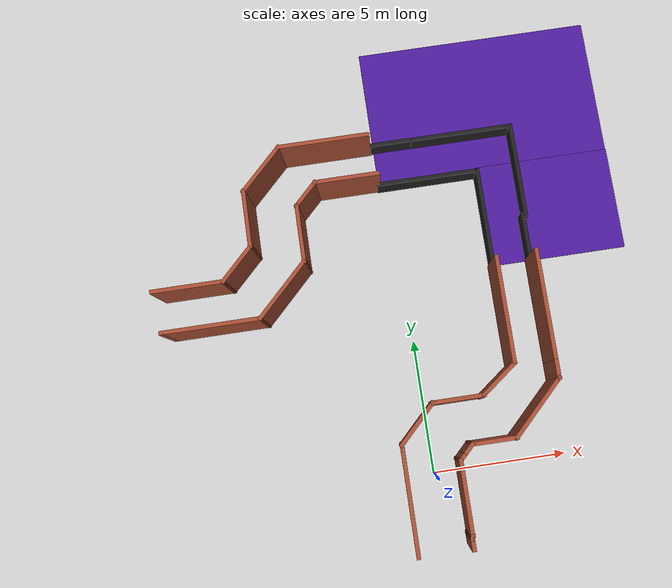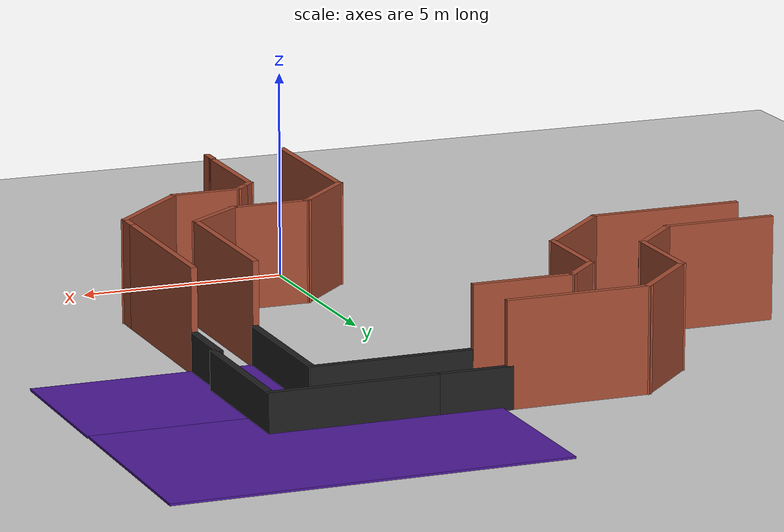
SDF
<sdf version="1.6">
 <world name="default">
  <light type="directional" name="sun">
   <cast_shadows>false</cast_shadows>
   <pose>-6 2 5 -0.5 -0.5 0</pose>
   <diffuse>0.8 0.8 0.8 1</diffuse>
   <specular>0.9 0.9 0.9 1</specular>
   <attenuation>
    <range>1000</range>
    <constant>0.9</constant>
    <linear>0.01</linear>
    <quadratic>0.001</quadratic>
   </attenuation>
   <direction>0 0 -1</direction>
  </light>
  <light type="directional" name="sun2">
   <cast_shadows>false</cast_shadows>
   <pose>-3 -7 5 0.5 0.5 0</pose>
   <diffuse>0.8 0.8 0.8 1</diffuse>
   <specular>0.9 0.9 0.9 1</specular>
   <attenuation>
    <range>1000</range>
    <constant>0.9</constant>
    <linear>0.01</linear>
    <quadratic>0.001</quadratic>
   </attenuation>
   <direction>0 0 -1</direction>
  </light>
  <model name="ground_plane">
   <static>1</static>
   <link name="link">
    <collision name="collision">
     <geometry><plane><normal>0 0 1</normal><size>100 100</size></plane></geometry>
     <surface><friction><ode><mu>100</mu><mu2>50</mu2></ode></friction></surface>
    </collision>
    <visual name="visual">
     <cast_shadows>0</cast_shadows>
     <geometry><plane><normal>0 0 1</normal><size>100 100</size></plane></geometry>
     <material>
      <script><uri>file://media/materials/scripts/gazebo.material</uri><name>Gazebo/Grey</name></script>
     </material>
    </visual>
   </link>
  </model>
  <gravity>0 0 -9.8</gravity>
  <magnetic_field>6e-06 2.3e-05 -4.2e-05</magnetic_field>
  <atmosphere type="adiabatic"/>
  <physics name="default_physics" default="0" type="ode">
   <max_step_size>0.01</max_step_size>
   <real_time_factor>1</real_time_factor>
   <real_time_update_rate>0</real_time_update_rate>
  </physics>
  <scene><ambient>0.4 0.4 0.4 1</ambient><background>0.7 0.7 0.7 1</background><shadows>0</shadows></scene>
  <spherical_coordinates>
   <surface_model>EARTH_WGS84</surface_model>
   <latitude_deg>0</latitude_deg>
   <longitude_deg>0</longitude_deg>
   <elevation>0</elevation>
   <heading_deg>0</heading_deg>
  </spherical_coordinates>
  <model name="Circuit_ql_2c_0">
   <link name="link_0">
    <pose>-0.02607 1.78312 0 0 -0 0</pose>
    <inertial>
     <mass>2.28469</mass>
     <inertia><ixx>6.04283</ixx><ixy>0</ixy><ixz>0</ixz><iyy>16.0094</iyy><iyz>0</iyz><izz>22.0522</izz></inertia>
     <pose>0 0 0.01 0 -0 0</pose>
    </inertial>
    <visual name="visual">
     <pose>0 0 0.05 0 -0 0</pose>
     <geometry><box><size>9.16985 5.63372 0.05</size></box></geometry>
     <material>
      <lighting>1</lighting>
      <script><uri>file://media/materials/scripts/gazebo.material</uri><name>Gazebo/Indigo</name></script>
      <emissive>0 0 0 1</emissive>
      <shader type="vertex"><normal_map>__default__</normal_map></shader>
     </material>
     <cast_shadows>0</cast_shadows>
    </visual>
   </link>
   <link name="Wall_1">
    <pose>-2.675 -1.075 0 0 -0 0</pose>
    <visual name="Wall_1_Visual">
     <pose>0 0 0.5 0 -0 0</pose>
     <geometry><box><size>4 0.15 1</size></box></geometry>
     <material>
      <script><uri>file://media/materials/scripts/gazebo.material</uri><name>Gazebo/Black</name></script>
      <emissive>0 0 0 1</emissive>
     </material>
     <cast_shadows>0</cast_shadows>
    </visual>
    <collision name="Wall_1_Collision">
     <pose>0 0 0.5 0 -0 0</pose>
     <geometry><box><size>4 0.15 1</size></box></geometry>
     <surface>
      <friction>
       <ode><mu>1</mu><mu2>1</mu2><fdir1>0 0 0</fdir1><slip1>0</slip1><slip2>0</slip2></ode>
       <torsional>
        <coefficient>1</coefficient>
        <patch_radius>0</patch_radius>
        <surface_radius>0</surface_radius>
        <use_patch_radius>1</use_patch_radius>
        <ode><slip>0</slip></ode>
       </torsional>
      </friction>
      <bounce><restitution_coefficient>0</restitution_coefficient><threshold>1e+06</threshold></bounce>
      <contact>
       <collide_without_contact>0</collide_without_contact>
       <collide_without_contact_bitmask>1</collide_without_contact_bitmask>
       <collide_bitmask>1</collide_bitmask>
       <ode>
        <soft_cfm>0</soft_cfm>
        <soft_erp>0.2</soft_erp>
        <kp>1e+13</kp>
        <kd>1</kd>
        <max_vel>0.01</max_vel>
        <min_depth>0</min_depth>
       </ode>
       <bullet>
        <split_impulse>1</split_impulse>
        <split_impulse_penetration_threshold>-0.01</split_impulse_penetration_threshold>
        <soft_cfm>0</soft_cfm>
        <soft_erp>0.2</soft_erp>
        <kp>1e+13</kp>
        <kd>1</kd>
       </bullet>
      </contact>
     </surface>
    </collision>
   </link>
   <link name="Wall_12">
    <pose>-1.111 0.509 0 0 -0 0</pose>
    <visual name="Wall_12_Visual">
     <pose>0 0 0.5 0 -0 0</pose>
     <geometry><box><size>4 0.15 1</size></box></geometry>
     <material>
      <script><uri>file://media/materials/scripts/gazebo.material</uri><name>Gazebo/Black</name></script>
      <emissive>0 0 0 1</emissive>
     </material>
     <cast_shadows>0</cast_shadows>
    </visual>
    <collision name="Wall_12_Collision">
     <pose>0 0 0.5 0 -0 0</pose>
     <geometry><box><size>4 0.15 1</size></box></geometry>
     <surface>
      <friction>
       <ode><mu>1</mu><mu2>1</mu2><fdir1>0 0 0</fdir1><slip1>0</slip1><slip2>0</slip2></ode>
       <torsional>
        <coefficient>1</coefficient>
        <patch_radius>0</patch_radius>
        <surface_radius>0</surface_radius>
        <use_patch_radius>1</use_patch_radius>
        <ode><slip>0</slip></ode>
       </torsional>
      </friction>
      <bounce><restitution_coefficient>0</restitution_coefficient><threshold>1e+06</threshold></bounce>
      <contact>
       <collide_without_contact>0</collide_without_contact>
       <collide_without_contact_bitmask>1</collide_without_contact_bitmask>
       <collide_bitmask>1</collide_bitmask>
       <ode>
        <soft_cfm>0</soft_cfm>
        <soft_erp>0.2</soft_erp>
        <kp>1e+13</kp>
        <kd>1</kd>
        <max_vel>0.01</max_vel>
        <min_depth>0</min_depth>
       </ode>
       <bullet>
        <split_impulse>1</split_impulse>
        <split_impulse_penetration_threshold>-0.01</split_impulse_penetration_threshold>
        <soft_cfm>0</soft_cfm>
        <soft_erp>0.2</soft_erp>
        <kp>1e+13</kp>
        <kd>1</kd>
       </bullet>
      </contact>
     </surface>
    </collision>
   </link>
   <link name="Wall_13">
    <pose>0.814 -1.291 0 0 0 -1.5708</pose>
    <visual name="Wall_13_Visual">
     <pose>0 0 0.5 0 -0 0</pose>
     <geometry><box><size>3.75 0.15 1</size></box></geometry>
     <material>
      <script><uri>file://media/materials/scripts/gazebo.material</uri><name>Gazebo/Black</name></script>
      <emissive>0 0 0 1</emissive>
     </material>
     <cast_shadows>0</cast_shadows>
    </visual>
    <collision name="Wall_13_Collision">
     <pose>0 0 0.5 0 -0 0</pose>
     <geometry><box><size>3.75 0.15 1</size></box></geometry>
     <surface>
      <friction>
       <ode><mu>1</mu><mu2>1</mu2><fdir1>0 0 0</fdir1><slip1>0</slip1><slip2>0</slip2></ode>
       <torsional>
        <coefficient>1</coefficient>
        <patch_radius>0</patch_radius>
        <surface_radius>0</surface_radius>
        <use_patch_radius>1</use_patch_radius>
        <ode><slip>0</slip></ode>
       </torsional>
      </friction>
      <bounce><restitution_coefficient>0</restitution_coefficient><threshold>1e+06</threshold></bounce>
      <contact>
       <collide_without_contact>0</collide_without_contact>
       <collide_without_contact_bitmask>1</collide_without_contact_bitmask>
       <collide_bitmask>1</collide_bitmask>
       <ode>
        <soft_cfm>0</soft_cfm>
        <soft_erp>0.2</soft_erp>
        <kp>1e+13</kp>
        <kd>1</kd>
        <max_vel>0.01</max_vel>
        <min_depth>0</min_depth>
       </ode>
       <bullet>
        <split_impulse>1</split_impulse>
        <split_impulse_penetration_threshold>-0.01</split_impulse_penetration_threshold>
        <soft_cfm>0</soft_cfm>
        <soft_erp>0.2</soft_erp>
        <kp>1e+13</kp>
        <kd>1</kd>
       </bullet>
      </contact>
     </surface>
    </collision>
   </link>
   <link name="Wall_2">
    <pose>-0.75 -2.875 0 0 0 -1.5708</pose>
    <visual name="Wall_2_Visual">
     <pose>0 0 0.5 0 -0 0</pose>
     <geometry><box><size>3.7 0.15 1</size></box></geometry>
     <material>
      <script><uri>file://media/materials/scripts/gazebo.material</uri><name>Gazebo/Black</name></script>
      <emissive>0 0 0 1</emissive>
     </material>
     <cast_shadows>0</cast_shadows>
    </visual>
    <collision name="Wall_2_Collision">
     <pose>0 0 0.5 0 -0 0</pose>
     <geometry><box><size>3.7 0.15 1</size></box></geometry>
     <surface>
      <friction>
       <ode><mu>1</mu><mu2>1</mu2><fdir1>0 0 0</fdir1><slip1>0</slip1><slip2>0</slip2></ode>
       <torsional>
        <coefficient>1</coefficient>
        <patch_radius>0</patch_radius>
        <surface_radius>0</surface_radius>
        <use_patch_radius>1</use_patch_radius>
        <ode><slip>0</slip></ode>
       </torsional>
      </friction>
      <bounce><restitution_coefficient>0</restitution_coefficient><threshold>1e+06</threshold></bounce>
      <contact>
       <collide_without_contact>0</collide_without_contact>
       <collide_without_contact_bitmask>1</collide_without_contact_bitmask>
       <collide_bitmask>1</collide_bitmask>
       <ode>
        <soft_cfm>0</soft_cfm>
        <soft_erp>0.2</soft_erp>
        <kp>1e+13</kp>
        <kd>1</kd>
        <max_vel>0.01</max_vel>
        <min_depth>0</min_depth>
       </ode>
       <bullet>
        <split_impulse>1</split_impulse>
        <split_impulse_penetration_threshold>-0.01</split_impulse_penetration_threshold>
        <soft_cfm>0</soft_cfm>
        <soft_erp>0.2</soft_erp>
        <kp>1e+13</kp>
        <kd>1</kd>
       </bullet>
      </contact>
     </surface>
    </collision>
   </link>
   <link name="link_0_clone">
    <pose>1.94281 -2.73444 0 0 -0 0</pose>
    <inertial>
     <mass>0.684711</mass>
     <inertia><ixx>0.860788</ixx><ixy>0</ixy><ixz>0</ixz><iyy>1.53132</iyy><iyz>0</iyz><izz>2.51187</izz></inertia>
     <pose>0 0 0.01 0 -0 0</pose>
    </inertial>
    <visual name="visual">
     <pose>0 0 0.05 0 -0 0</pose>
     <geometry><box><size>5.28078 4.01687 0.05</size></box></geometry>
     <material>
      <lighting>1</lighting>
      <script><uri>file://media/materials/scripts/gazebo.material</uri><name>Gazebo/Indigo</name></script>
      <emissive>0 0 0 1</emissive>
      <shader type="pixel"/>
     </material>
     <cast_shadows>0</cast_shadows>
    </visual>
   </link>
   <static>1</static>
   <pose>4.16492 12.2085 0 0 -0 0</pose>
  </model>
  <model name="path222">
   <pose>2.1229 10.1411 0 0 -0 0</pose>
   <link name="Wall_39">
    <collision name="Wall_39_Collision">
     <geometry><box><size>1.75 0.15 1</size></box></geometry>
     <pose>0 0 0.5 0 -0 0</pose>
    </collision>
    <visual name="Wall_39_Visual">
     <pose>0 0 0.5 0 -0 0</pose>
     <geometry><box><size>1.75 0.15 1</size></box></geometry>
     <material>
      <script><uri>file://media/materials/scripts/gazebo.material</uri><name>Gazebo/Black</name></script>
      <ambient>0 0 0 1</ambient>
     </material>
    </visual>
    <pose>2.74437 -1.78223 0 0 0 -1.5708</pose>
   </link>
   <link name="Wall_46">
    <collision name="Wall_46_Collision">
     <geometry><box><size>1.75 0.15 1</size></box></geometry>
     <pose>0 0 0.5 0 -0 -3.14</pose>
    </collision>
    <visual name="Wall_46_Visual">
     <pose>0 0 0.5 0 -0 -3.14</pose>
     <geometry><box><size>1.75 0.15 1</size></box></geometry>
     <material>
      <script><uri>file://media/materials/scripts/gazebo.material</uri><name>Gazebo/Black</name></script>
      <ambient>0 0 0 1</ambient>
     </material>
    </visual>
    <pose>-1.94437 2.58223 0 0 -0 3.14159</pose>
   </link>
   <static>1</static>
  </model>
  <model name="Dummy1">
   <pose>-2.14643 5.04611 0 0 -0 0</pose>
   <link name="Wall_0">
    <collision name="Wall_0_Collision">
     <geometry><box><size>4.25 0.15 2.5</size></box></geometry>
     <pose>0 0 1.25 0 -0 0</pose>
    </collision>
    <visual name="Wall_0_Visual">
     <pose>0 0 1.25 0 -0 0</pose>
     <geometry><box><size>4.25 0.15 2.5</size></box></geometry>
     <material>
      <script><uri>file://media/materials/scripts/gazebo.material</uri><name>Gazebo/Bricks</name></script>
      <ambient>1 1 1 1</ambient>
     </material>
     <meta><layer>0</layer></meta>
    </visual>
    <pose>7.00878 0.344042 0 0 -0 1.5708</pose>
   </link>
   <link name="Wall_10">
    <collision name="Wall_10_Collision">
     <geometry><box><size>2.75 0.15 2.5</size></box></geometry>
     <pose>0 0 1.25 0 -0 0</pose>
    </collision>
    <visual name="Wall_10_Visual">
     <pose>0 0 1.25 0 -0 0</pose>
     <geometry><box><size>2.75 0.15 2.5</size></box></geometry>
     <material>
      <script><uri>file://media/materials/scripts/gazebo.material</uri><name>Gazebo/Bricks</name></script>
      <ambient>1 1 1 1</ambient>
     </material>
     <meta><layer>0</layer></meta>
    </visual>
    <pose>6.08955 -3.2252 0 0 0 -2.35619</pose>
   </link>
   <link name="Wall_11">
    <collision name="Wall_11_Collision">
     <geometry><box><size>1.75 0.15 2.5</size></box></geometry>
     <pose>0 0 1.25 0 -0 0</pose>
    </collision>
    <visual name="Wall_11_Visual">
     <pose>0 0 1.25 0 -0 0</pose>
     <geometry><box><size>1.75 0.15 2.5</size></box></geometry>
     <material>
      <script><uri>file://media/materials/scripts/gazebo.material</uri><name>Gazebo/Bricks</name></script>
      <ambient>1 1 1 1</ambient>
     </material>
     <meta><layer>0</layer></meta>
    </visual>
    <pose>4.37031 -4.14444 0 0 -0 3.14159</pose>
   </link>
   <link name="Wall_12">
    <collision name="Wall_12_Collision">
     <geometry><box><size>0.5 0.15 2.5</size></box></geometry>
     <pose>0 0 1.25 0 -0 0</pose>
    </collision>
    <visual name="Wall_12_Visual">
     <pose>0 0 1.25 0 -0 0</pose>
     <geometry><box><size>0.5 0.15 2.5</size></box></geometry>
     <material>
      <script><uri>file://media/materials/scripts/gazebo.material</uri><name>Gazebo/Bricks</name></script>
      <ambient>1 1 1 1</ambient>
     </material>
     <meta><layer>0</layer></meta>
    </visual>
    <pose>3.44656 -4.26818 0 0 0 -2.35619</pose>
   </link>
   <link name="Wall_13">
    <collision name="Wall_13_Collision">
     <geometry><box><size>0.5 0.15 2.5</size></box></geometry>
     <pose>0 0 1.25 0 -0 0</pose>
    </collision>
    <visual name="Wall_13_Visual">
     <pose>0 0 1.25 0 -0 0</pose>
     <geometry><box><size>0.5 0.15 2.5</size></box></geometry>
     <material>
      <script><uri>file://media/materials/scripts/gazebo.material</uri><name>Gazebo/Bricks</name></script>
      <ambient>1 1 1 1</ambient>
     </material>
     <meta><layer>0</layer></meta>
    </visual>
    <pose>3.19908 -4.51567 0 0 0 -2.35619</pose>
   </link>
   <link name="Wall_14">
    <collision name="Wall_14_Collision">
     <geometry><box><size>2.75 0.15 2.5</size></box></geometry>
     <pose>0 0 1.25 0 -0 0</pose>
    </collision>
    <visual name="Wall_14_Visual">
     <pose>0 0 1.25 0 -0 0</pose>
     <geometry><box><size>2.75 0.15 2.5</size></box></geometry>
     <material>
      <script><uri>file://media/materials/scripts/gazebo.material</uri><name>Gazebo/Bricks</name></script>
      <ambient>1 1 1 1</ambient>
     </material>
     <meta><layer>0</layer></meta>
    </visual>
    <pose>3.07533 -5.93941 0 0 0 -1.5708</pose>
   </link>
   <link name="Wall_15">
    <collision name="Wall_15_Collision">
     <geometry><box><size>0.25 0.15 2.5</size></box></geometry>
     <pose>0 0 1.25 0 -0 0</pose>
    </collision>
    <visual name="Wall_15_Visual">
     <pose>0 0 1.25 0 -0 0</pose>
     <geometry><box><size>0.25 0.15 2.5</size></box></geometry>
     <material>
      <script><uri>file://media/materials/scripts/gazebo.material</uri><name>Gazebo/Bricks</name></script>
      <ambient>1 1 1 1</ambient>
     </material>
     <meta><layer>0</layer></meta>
    </visual>
    <pose>3.06239 -7.28771 0 0 0 -1.8326</pose>
   </link>
   <link name="Wall_16">
    <collision name="Wall_16_Collision">
     <geometry><box><size>0.5 0.15 2.5</size></box></geometry>
     <pose>0 0 1.25 0 -0 0</pose>
    </collision>
    <visual name="Wall_16_Visual">
     <pose>0 0 1.25 0 -0 0</pose>
     <geometry><box><size>0.5 0.15 2.5</size></box></geometry>
     <material>
      <script><uri>file://media/materials/scripts/gazebo.material</uri><name>Gazebo/Bricks</name></script>
      <ambient>1 1 1 1</ambient>
     </material>
     <meta><layer>0</layer></meta>
    </visual>
    <pose>3.04945 -7.511 0 0 0 -1.5708</pose>
   </link>
   <link name="Wall_18">
    <collision name="Wall_18_Collision">
     <geometry><box><size>3.5 0.15 2.5</size></box></geometry>
     <pose>0 0 1.25 0 -0 0</pose>
    </collision>
    <visual name="Wall_18_Visual">
     <pose>0 0 1.25 0 -0 0</pose>
     <geometry><box><size>3.5 0.15 2.5</size></box></geometry>
     <material>
      <script><uri>file://media/materials/scripts/gazebo.material</uri><name>Gazebo/Bricks</name></script>
      <ambient>1 1 1 1</ambient>
     </material>
     <meta><layer>0</layer></meta>
    </visual>
    <pose>-0.148556 7.65494 0 0 -0 3.14159</pose>
   </link>
   <link name="Wall_20">
    <collision name="Wall_20_Collision">
     <geometry><box><size>2.25 0.15 2.5</size></box></geometry>
     <pose>0 0 1.25 0 -0 0</pose>
    </collision>
    <visual name="Wall_20_Visual">
     <pose>0 0 1.25 0 -0 0</pose>
     <geometry><box><size>2.25 0.15 2.5</size></box></geometry>
     <material>
      <script><uri>file://media/materials/scripts/gazebo.material</uri><name>Gazebo/Bricks</name></script>
      <ambient>1 1 1 1</ambient>
     </material>
     <meta><layer>0</layer></meta>
    </visual>
    <pose>-2.56602 6.91247 0 0 0 -2.35619</pose>
   </link>
   <link name="Wall_21">
    <collision name="Wall_21_Collision">
     <geometry><box><size>2.25 0.15 2.5</size></box></geometry>
     <pose>0 0 1.25 0 -0 0</pose>
    </collision>
    <visual name="Wall_21_Visual">
     <pose>0 0 1.25 0 -0 0</pose>
     <geometry><box><size>2.25 0.15 2.5</size></box></geometry>
     <material>
      <script><uri>file://media/materials/scripts/gazebo.material</uri><name>Gazebo/Bricks</name></script>
      <ambient>1 1 1 1</ambient>
     </material>
     <meta><layer>0</layer></meta>
    </visual>
    <pose>-3.30848 5.12001 0 0 0 -1.5708</pose>
   </link>
   <link name="Wall_22">
    <collision name="Wall_22_Collision">
     <geometry><box><size>1.75 0.15 2.5</size></box></geometry>
     <pose>0 0 1.25 0 -0 0</pose>
    </collision>
    <visual name="Wall_22_Visual">
     <pose>0 0 1.25 0 -0 0</pose>
     <geometry><box><size>1.75 0.15 2.5</size></box></geometry>
     <material>
      <script><uri>file://media/materials/scripts/gazebo.material</uri><name>Gazebo/Bricks</name></script>
      <ambient>1 1 1 1</ambient>
     </material>
     <meta><layer>0</layer></meta>
    </visual>
    <pose>-3.87417 3.50433 0 0 0 -2.35619</pose>
   </link>
   <link name="Wall_23">
    <collision name="Wall_23_Collision">
     <geometry><box><size>2.75 0.15 2.5</size></box></geometry>
     <pose>0 0 1.25 0 -0 0</pose>
    </collision>
    <visual name="Wall_23_Visual">
     <pose>0 0 1.25 0 -0 0</pose>
     <geometry><box><size>2.75 0.15 2.5</size></box></geometry>
     <material>
      <script><uri>file://media/materials/scripts/gazebo.material</uri><name>Gazebo/Bricks</name></script>
      <ambient>1 1 1 1</ambient>
     </material>
     <meta><layer>0</layer></meta>
    </visual>
    <pose>-5.73985 2.93864 0 0 -0 3.14159</pose>
   </link>
   <link name="Wall_25">
    <collision name="Wall_25_Collision">
     <geometry><box><size>2.5 0.15 2.5</size></box></geometry>
     <pose>0 0 1.25 0 -0 0</pose>
    </collision>
    <visual name="Wall_25_Visual">
     <pose>0 0 1.25 0 -0 0</pose>
     <geometry><box><size>2.5 0.15 2.5</size></box></geometry>
     <material>
      <script><uri>file://media/materials/scripts/gazebo.material</uri><name>Gazebo/Bricks</name></script>
      <ambient>1 1 1 1</ambient>
     </material>
     <meta><layer>0</layer></meta>
    </visual>
    <pose>0.519977 6.11674 0 0 -0 3.14159</pose>
   </link>
   <link name="Wall_27">
    <collision name="Wall_27_Collision">
     <geometry><box><size>1.25 0.15 2.5</size></box></geometry>
     <pose>0 0 1.25 0 -0 0</pose>
    </collision>
    <visual name="Wall_27_Visual">
     <pose>0 0 1.25 0 -0 0</pose>
     <geometry><box><size>1.25 0.15 2.5</size></box></geometry>
     <material>
      <script><uri>file://media/materials/scripts/gazebo.material</uri><name>Gazebo/Bricks</name></script>
      <ambient>1 1 1 1</ambient>
     </material>
     <meta><layer>0</layer></meta>
    </visual>
    <pose>-1.04393 5.72783 0 0 0 -2.35619</pose>
   </link>
   <link name="Wall_28">
    <collision name="Wall_28_Collision">
     <geometry><box><size>2.25 0.15 2.5</size></box></geometry>
     <pose>0 0 1.25 0 -0 0</pose>
    </collision>
    <visual name="Wall_28_Visual">
     <pose>0 0 1.25 0 -0 0</pose>
     <geometry><box><size>2.25 0.15 2.5</size></box></geometry>
     <material>
      <script><uri>file://media/materials/scripts/gazebo.material</uri><name>Gazebo/Bricks</name></script>
      <ambient>1 1 1 1</ambient>
     </material>
     <meta><layer>0</layer></meta>
    </visual>
    <pose>-1.43284 4.28892 0 0 0 -1.5708</pose>
   </link>
   <link name="Wall_29">
    <collision name="Wall_29_Collision">
     <geometry><box><size>2.75 0.15 2.5</size></box></geometry>
     <pose>0 0 1.25 0 -0 0</pose>
    </collision>
    <visual name="Wall_29_Visual">
     <pose>0 0 1.25 0 -0 0</pose>
     <geometry><box><size>2.75 0.15 2.5</size></box></geometry>
     <material>
      <script><uri>file://media/materials/scripts/gazebo.material</uri><name>Gazebo/Bricks</name></script>
      <ambient>1 1 1 1</ambient>
     </material>
     <meta><layer>0</layer></meta>
    </visual>
    <pose>-2.35208 2.31968 0 0 0 -2.35619</pose>
   </link>
   <link name="Wall_3">
    <collision name="Wall_3_Collision">
     <geometry><box><size>4 0.15 2.5</size></box></geometry>
     <pose>0 0 1.25 0 -0 0</pose>
    </collision>
    <visual name="Wall_3_Visual">
     <pose>0 0 1.25 0 -0 0</pose>
     <geometry><box><size>4 0.15 2.5</size></box></geometry>
     <material>
      <script><uri>file://media/materials/scripts/gazebo.material</uri><name>Gazebo/Bricks</name></script>
      <ambient>1 1 1 1</ambient>
     </material>
     <meta><layer>0</layer></meta>
    </visual>
    <pose>5.52576 0.43854 0 0 0 -1.5708</pose>
   </link>
   <link name="Wall_30">
    <collision name="Wall_30_Collision">
     <geometry><box><size>3.75 0.15 2.5</size></box></geometry>
     <pose>0 0 1.25 0 -0 0</pose>
    </collision>
    <visual name="Wall_30_Visual">
     <pose>0 0 1.25 0 -0 0</pose>
     <geometry><box><size>3.75 0.15 2.5</size></box></geometry>
     <material>
      <script><uri>file://media/materials/scripts/gazebo.material</uri><name>Gazebo/Bricks</name></script>
      <ambient>1 1 1 1</ambient>
     </material>
     <meta><layer>0</layer></meta>
    </visual>
    <pose>-5.07132 1.40044 0 0 -0 3.14159</pose>
   </link>
   <link name="Wall_31">
    <collision name="Wall_31_Collision">
     <geometry><box><size>0.15 0.15 2.5</size></box></geometry>
     <pose>0 0 1.25 0 -0 0</pose>
    </collision>
    <visual name="Wall_31_Visual">
     <pose>0 0 1.25 0 -0 0</pose>
     <geometry><box><size>0.15 0.15 2.5</size></box></geometry>
     <material>
      <script><uri>file://media/materials/scripts/gazebo.material</uri><name>Gazebo/Bricks</name></script>
      <ambient>1 1 1 1</ambient>
     </material>
     <meta><layer>0</layer></meta>
    </visual>
    <pose>-6.87132 1.40044 0 0 -0 0</pose>
   </link>
   <link name="Wall_4">
    <collision name="Wall_4_Collision">
     <geometry><box><size>1.73256 0.15 2.5</size></box></geometry>
     <pose>0 0 1.25 0 -0 0</pose>
    </collision>
    <visual name="Wall_4_Visual">
     <pose>0 0 1.25 0 -0 0</pose>
     <geometry><box><size>1.73256 0.15 2.5</size></box></geometry>
     <material>
      <script><uri>file://media/materials/scripts/gazebo.material</uri><name>Gazebo/Bricks</name></script>
      <ambient>1 1 1 1</ambient>
     </material>
     <meta><layer>0</layer></meta>
    </visual>
    <pose>4.89464 -2.02528 0 0 0 -2.49409</pose>
   </link>
   <link name="Wall_5">
    <collision name="Wall_5_Collision">
     <geometry><box><size>2 0.15 2.5</size></box></geometry>
     <pose>0 0 1.25 0 -0 0</pose>
    </collision>
    <visual name="Wall_5_Visual">
     <pose>0 0 1.25 0 -0 0</pose>
     <geometry><box><size>2 0.15 2.5</size></box></geometry>
     <material>
      <script><uri>file://media/materials/scripts/gazebo.material</uri><name>Gazebo/Bricks</name></script>
      <ambient>1 1 1 1</ambient>
     </material>
     <meta><layer>0</layer></meta>
    </visual>
    <pose>3.33852 -2.50258 0 0 -0 3.14159</pose>
   </link>
   <link name="Wall_6">
    <collision name="Wall_6_Collision">
     <geometry><box><size>2 0.15 2.5</size></box></geometry>
     <pose>0 0 1.25 0 -0 0</pose>
    </collision>
    <visual name="Wall_6_Visual">
     <pose>0 0 1.25 0 -0 0</pose>
     <geometry><box><size>2 0.15 2.5</size></box></geometry>
     <material>
      <script><uri>file://media/materials/scripts/gazebo.material</uri><name>Gazebo/Bricks</name></script>
      <ambient>1 1 1 1</ambient>
     </material>
     <meta><layer>0</layer></meta>
    </visual>
    <pose>1.75945 -3.15666 0 0 0 -2.35619</pose>
   </link>
   <link name="Wall_7">
    <collision name="Wall_7_Collision">
     <geometry><box><size>4 0.15 2.5</size></box></geometry>
     <pose>0 0 1.25 0 -0 0</pose>
    </collision>
    <visual name="Wall_7_Visual">
     <pose>0 0 1.25 0 -0 0</pose>
     <geometry><box><size>4 0.15 2.5</size></box></geometry>
     <material>
      <script><uri>file://media/materials/scripts/gazebo.material</uri><name>Gazebo/Bricks</name></script>
      <ambient>1 1 1 1</ambient>
     </material>
     <meta><layer>0</layer></meta>
    </visual>
    <pose>1.10537 -5.73573 0 0 0 -1.5708</pose>
   </link>
   <link name="Wall_9">
    <collision name="Wall_9_Collision">
     <geometry><box><size>0.75 0.15 2.5</size></box></geometry>
     <pose>0 0 1.25 0 -0 0</pose>
    </collision>
    <visual name="Wall_9_Visual">
     <pose>0 0 1.25 0 -0 0</pose>
     <geometry><box><size>0.75 0.15 2.5</size></box></geometry>
     <material>
      <script><uri>file://media/materials/scripts/gazebo.material</uri><name>Gazebo/Bricks</name></script>
      <ambient>1 1 1 1</ambient>
     </material>
     <meta><layer>0</layer></meta>
    </visual>
    <pose>7.00878 -2.00596 0 0 0 -1.5708</pose>
   </link>
   <static>1</static>
  </model>
 </world>
</sdf>
